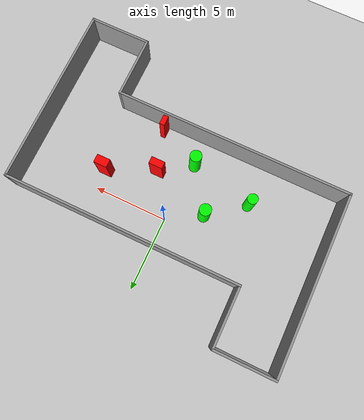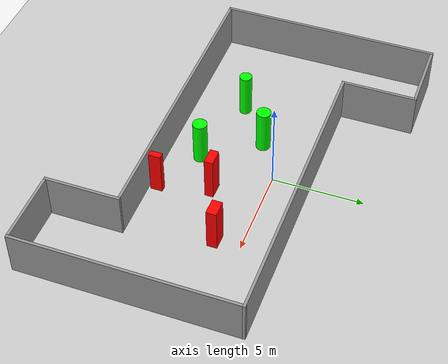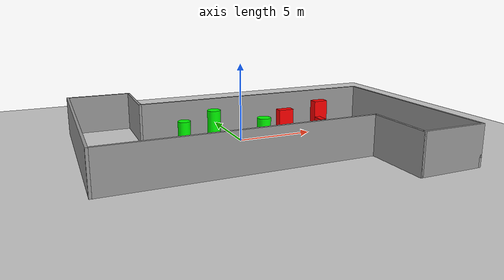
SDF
<sdf version="1.7">
 <world name="default">
  <light name="sun" type="directional">
   <pose>0 0 10 0 -0 0</pose>
   <diffuse>0.8 0.8 0.8 1</diffuse>
   <specular>0.2 0.2 0.2 1</specular>
   <attenuation>
    <range>1000</range>
    <constant>0.9</constant>
    <linear>0.01</linear>
    <quadratic>0.001</quadratic>
   </attenuation>
   <direction>-0.5 0.1 -0.9</direction>
   <spot><inner_angle>0</inner_angle><outer_angle>0</outer_angle><falloff>0</falloff></spot>
  </light>
  <model name="ground_plane">
   <static>1</static>
   <link name="link">
    <collision name="collision">
     <geometry><plane><normal>0 0 1</normal><size>100 100</size></plane></geometry>
     <surface>
      <contact><collide_bitmask>65535</collide_bitmask></contact>
      <friction><ode><mu>100</mu><mu2>50</mu2></ode></friction>
     </surface>
    </collision>
    <visual name="visual">
     <cast_shadows>0</cast_shadows>
     <geometry><plane><normal>0 0 1</normal><size>100 100</size></plane></geometry>
     <material>
      <script><uri>file://media/materials/scripts/gazebo.material</uri><name>Gazebo/Grey</name></script>
     </material>
    </visual>
   </link>
  </model>
  <gravity>0 0 -9.8</gravity>
  <magnetic_field>6e-06 2.3e-05 -4.2e-05</magnetic_field>
  <atmosphere type="adiabatic"/>
  <physics type="ode">
   <max_step_size>0.001</max_step_size>
   <real_time_factor>1</real_time_factor>
   <real_time_update_rate>1000</real_time_update_rate>
  </physics>
  <scene><ambient>0.4 0.4 0.4 1</ambient><background>0.7 0.7 0.7 1</background><shadows>1</shadows></scene>
  <spherical_coordinates>
   <surface_model>EARTH_WGS84</surface_model>
   <latitude_deg>0</latitude_deg>
   <longitude_deg>0</longitude_deg>
   <elevation>0</elevation>
   <heading_deg>0</heading_deg>
  </spherical_coordinates>
  <model name="my_base_walls">
   <link name="Wall_13">
    <collision name="Wall_13_Collision">
     <geometry><box><size>12.15 0.15 2.5</size></box></geometry>
     <pose>0 0 1.25 0 -0 0</pose>
    </collision>
    <visual name="Wall_13_Visual">
     <pose>0 0 1.25 0 -0 0</pose>
     <geometry><box><size>12.15 0.15 2.5</size></box></geometry>
     <material>
      <script><uri>file://media/materials/scripts/gazebo.material</uri><name>Gazebo/Grey</name></script>
      <ambient>1 1 1 1</ambient>
     </material>
     <meta><layer>0</layer></meta>
    </visual>
    <pose>10 -2 0 0 -0 1.5708</pose>
   </link>
   <link name="Wall_15">
    <collision name="Wall_15_Collision">
     <geometry><box><size>16.15 0.15 2.5</size></box></geometry>
     <pose>0 0 1.25 0 -0 0</pose>
    </collision>
    <visual name="Wall_15_Visual">
     <pose>0 0 1.25 0 -0 0</pose>
     <geometry><box><size>16.15 0.15 2.5</size></box></geometry>
     <material>
      <script><uri>file://media/materials/scripts/gazebo.material</uri><name>Gazebo/Grey</name></script>
      <ambient>1 1 1 1</ambient>
     </material>
     <meta><layer>0</layer></meta>
    </visual>
    <pose>2 4 0 0 -0 3.14159</pose>
   </link>
   <link name="Wall_17">
    <collision name="Wall_17_Collision">
     <geometry><box><size>4.15 0.15 2.5</size></box></geometry>
     <pose>0 0 1.25 0 -0 0</pose>
    </collision>
    <visual name="Wall_17_Visual">
     <pose>0 0 1.25 0 -0 0</pose>
     <geometry><box><size>4.15 0.15 2.5</size></box></geometry>
     <material>
      <script><uri>file://media/materials/scripts/gazebo.material</uri><name>Gazebo/Grey</name></script>
      <ambient>1 1 1 1</ambient>
     </material>
     <meta><layer>0</layer></meta>
    </visual>
    <pose>6 -6 0 0 -0 -1.5708</pose>
   </link>
   <link name="Wall_19">
    <collision name="Wall_19_Collision">
     <geometry><box><size>12.15 0.15 2.5</size></box></geometry>
     <pose>0 0 1.25 0 -0 0</pose>
    </collision>
    <visual name="Wall_19_Visual">
     <pose>0 0 1.25 0 -0 0</pose>
     <geometry><box><size>12.15 0.15 2.5</size></box></geometry>
     <material>
      <script><uri>file://media/materials/scripts/gazebo.material</uri><name>Gazebo/Grey</name></script>
      <ambient>1 1 1 1</ambient>
     </material>
     <meta><layer>0</layer></meta>
    </visual>
    <pose>-10 2 0 0 -0 1.5708</pose>
   </link>
   <link name="Wall_21">
    <collision name="Wall_21_Collision">
     <geometry><box><size>4.15 0.15 2.5</size></box></geometry>
     <pose>0 0 1.25 0 -0 0</pose>
    </collision>
    <visual name="Wall_21_Visual">
     <pose>0 0 1.25 0 -0 0</pose>
     <geometry><box><size>4.15 0.15 2.5</size></box></geometry>
     <material>
      <script><uri>file://media/materials/scripts/gazebo.material</uri><name>Gazebo/Grey</name></script>
      <ambient>1 1 1 1</ambient>
     </material>
     <meta><layer>0</layer></meta>
    </visual>
    <pose>-8 8 0 0 -0 0</pose>
   </link>
   <link name="Wall_23">
    <collision name="Wall_23_Collision">
     <geometry><box><size>4.15 0.15 2.5</size></box></geometry>
     <pose>0 0 1.25 0 -0 0</pose>
    </collision>
    <visual name="Wall_23_Visual">
     <pose>0 0 1.25 0 -0 0</pose>
     <geometry><box><size>4.15 0.15 2.5</size></box></geometry>
     <material>
      <script><uri>file://media/materials/scripts/gazebo.material</uri><name>Gazebo/Grey</name></script>
      <ambient>1 1 1 1</ambient>
     </material>
     <meta><layer>0</layer></meta>
    </visual>
    <pose>-6 6 0 0 -0 -1.5708</pose>
   </link>
   <link name="Wall_25">
    <collision name="Wall_25_Collision">
     <geometry><box><size>4.15 0.15 2.5</size></box></geometry>
     <pose>0 0 1.25 0 -0 0</pose>
    </collision>
    <visual name="Wall_25_Visual">
     <pose>0 0 1.25 0 -0 0</pose>
     <geometry><box><size>4.15 0.15 2.5</size></box></geometry>
     <material>
      <script><uri>file://media/materials/scripts/gazebo.material</uri><name>Gazebo/Grey</name></script>
      <ambient>1 1 1 1</ambient>
     </material>
     <meta><layer>0</layer></meta>
    </visual>
    <pose>8 -8 0 0 -0 0</pose>
   </link>
   <link name="Wall_9">
    <collision name="Wall_9_Collision">
     <geometry><box><size>16.15 0.15 2.5</size></box></geometry>
     <pose>0 0 1.25 0 -0 0</pose>
    </collision>
    <visual name="Wall_9_Visual">
     <pose>0 0 1.25 0 -0 0</pose>
     <geometry><box><size>16.15 0.15 2.5</size></box></geometry>
     <material>
      <script><uri>file://media/materials/scripts/gazebo.material</uri><name>Gazebo/Grey</name></script>
      <ambient>1 1 1 1</ambient>
     </material>
     <meta><layer>0</layer></meta>
    </visual>
    <pose>-2 -4 0 0 -0 3.14159</pose>
   </link>
   <static>1</static>
   <pose>-0 -2 0 0 -0 0</pose>
  </model>
  <model name="cylinder1">
   <static>1</static>
   <link name="link">
    <inertial>
     <mass>1</mass>
     <inertia><ixx>0.5</ixx><ixy>0</ixy><ixz>0</ixz><iyy>0.5</iyy><iyz>0</iyz><izz>1</izz></inertia>
    </inertial>
    <collision name="collision">
     <geometry><cylinder><radius>0.3949404782440059</radius><length>2.5</length></cylinder></geometry>
    </collision>
    <visual name="visual">
     <geometry><cylinder><radius>0.3949404782440059</radius><length>2.5</length></cylinder></geometry>
     <material>
      <ambient>0 1 0 1</ambient>
      <diffuse>0 1 0 1</diffuse>
      <specular>0.1 0.1 0.1 1</specular>
      <emissive>0 0 0 0</emissive>
     </material>
    </visual>
   </link>
   <pose>-2.2432143415710795 -1.2879702381635791 1.25 0 0 0</pose>
  </model>
  <model name="cylinder2">
   <static>1</static>
   <link name="link">
    <inertial>
     <mass>1</mass>
     <inertia><ixx>0.5</ixx><ixy>0</ixy><ixz>0</ixz><iyy>0.5</iyy><iyz>0</iyz><izz>1</izz></inertia>
    </inertial>
    <collision name="collision">
     <geometry><cylinder><radius>0.3449356239651635</radius><length>2.5</length></cylinder></geometry>
    </collision>
    <visual name="visual">
     <geometry><cylinder><radius>0.3449356239651635</radius><length>2.5</length></cylinder></geometry>
     <material>
      <ambient>0 1 0 1</ambient>
      <diffuse>0 1 0 1</diffuse>
      <specular>0.1 0.1 0.1 1</specular>
      <emissive>0 0 0 0</emissive>
     </material>
    </visual>
   </link>
   <pose>-4.608303871853833 -3.146021683445924 1.25 0 0 0</pose>
  </model>
  <model name="cylinder3">
   <static>1</static>
   <link name="link">
    <inertial>
     <mass>1</mass>
     <inertia><ixx>0.5</ixx><ixy>0</ixy><ixz>0</ixz><iyy>0.5</iyy><iyz>0</iyz><izz>1</izz></inertia>
    </inertial>
    <collision name="collision">
     <geometry><cylinder><radius>0.3924454229177982</radius><length>2.5</length></cylinder></geometry>
    </collision>
    <visual name="visual">
     <geometry><cylinder><radius>0.3924454229177982</radius><length>2.5</length></cylinder></geometry>
     <material>
      <ambient>0 1 0 1</ambient>
      <diffuse>0 1 0 1</diffuse>
      <specular>0.1 0.1 0.1 1</specular>
      <emissive>0 0 0 0</emissive>
     </material>
    </visual>
   </link>
   <pose>-0.27440602206116793 -4.165551852554779 1.25 0 0 0</pose>
  </model>
  <model name="box1">
   <static>1</static>
   <link name="link">
    <inertial>
     <mass>1</mass>
     <inertia><ixx>0.083</ixx><ixy>0</ixy><ixz>0</ixz><iyy>0.083</iyy><iyz>0</iyz><izz>0.083</izz></inertia>
    </inertial>
    <collision name="collision">
     <geometry><box><size>0.3389382809201694 0.6593791692395757 2.5</size></box></geometry>
    </collision>
    <visual name="visual">
     <geometry><box><size>0.3389382809201694 0.6593791692395757 2.5</size></box></geometry>
     <material>
      <ambient>1 0 0 1</ambient>
      <diffuse>1 0 0 1</diffuse>
      <specular>0.1 0.1 0.1 1</specular>
      <emissive>0 0 0 0</emissive>
     </material>
    </visual>
    <sensor name="my_contact" type="contact">
     <contact><collision>box_collision</collision><topic>__default_topic__</topic></contact>
    </sensor>
   </link>
   <pose>2.584189415587206 -5.4813846290573425 1.25 0 0 0</pose>
  </model>
  <model name="box2">
   <static>1</static>
   <link name="link">
    <inertial>
     <mass>1</mass>
     <inertia><ixx>0.083</ixx><ixy>0</ixy><ixz>0</ixz><iyy>0.083</iyy><iyz>0</iyz><izz>0.083</izz></inertia>
    </inertial>
    <collision name="collision">
     <geometry><box><size>0.8941929088054885 0.5595879342479589 2.5</size></box></geometry>
    </collision>
    <visual name="visual">
     <geometry><box><size>0.8941929088054885 0.5595879342479589 2.5</size></box></geometry>
     <material>
      <ambient>1 0 0 1</ambient>
      <diffuse>1 0 0 1</diffuse>
      <specular>0.1 0.1 0.1 1</specular>
      <emissive>0 0 0 0</emissive>
     </material>
    </visual>
    <sensor name="my_contact" type="contact">
     <contact><collision>box_collision</collision><topic>__default_topic__</topic></contact>
    </sensor>
   </link>
   <pose>4.954635562218655 -1.3677935386325393 1.25 0 0 0</pose>
  </model>
  <model name="box3">
   <static>1</static>
   <link name="link">
    <inertial>
     <mass>1</mass>
     <inertia><ixx>0.083</ixx><ixy>0</ixy><ixz>0</ixz><iyy>0.083</iyy><iyz>0</iyz><izz>0.083</izz></inertia>
    </inertial>
    <collision name="collision">
     <geometry><box><size>0.9207639479360392 0.4704075157520929 2.5</size></box></geometry>
    </collision>
    <visual name="visual">
     <geometry><box><size>0.9207639479360392 0.4704075157520929 2.5</size></box></geometry>
     <material>
      <ambient>1 0 0 1</ambient>
      <diffuse>1 0 0 1</diffuse>
      <specular>0.1 0.1 0.1 1</specular>
      <emissive>0 0 0 0</emissive>
     </material>
    </visual>
    <sensor name="my_contact" type="contact">
     <contact><collision>box_collision</collision><topic>__default_topic__</topic></contact>
    </sensor>
   </link>
   <pose>1.774280125820832 -2.730979398467479 1.25 0 0 0</pose>
  </model>
 </world>
</sdf>
